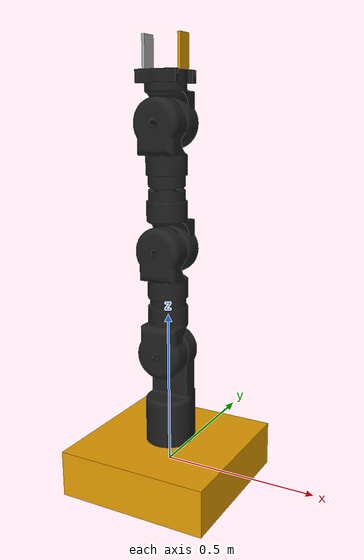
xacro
<robot name="six_dof_arm"  xmlns:xacro="http://www.ros.org/wiki/xacro">

	<xacro:include filename="$(find urdf_tutorials)/urdf/6dof_advanced/links_joints.xacro" />
  <xacro:include filename="$(find urdf_tutorials)/urdf/6dof_advanced/name.xacro" />

	<ros_box name="${link_00_name}"
              origin_rpy="0 0 0" origin_xyz="0 0 0"
              mass="359.99"
              ixx="32.7" ixy="-7.3275E-15" ixz="-7.4508E-18"
              iyy="32.7" iyz="2.9965E-16"
              izz="60"
              size="0.5 0.5 0.15" />

    <ros_joint name="joint_one" type="revolute"
           axis_xyz="0 0 1"
           origin_rpy="0 0 0" origin_xyz="0 0 0.075"
           parent="${link_00_name}" child="link_one"
           effort_limit="200" lower_limit="-3.14" upper_limit="3.14" velocity_limit="0.2" />

    <ros_3D_mesh name="link_one"
              origin_rpy="0 0 0" origin_xyz="0 0 0"
              mass="4.6167"
              ixx="0.069637" ixy="-1.8435E-05" ixz="-1.1246E-05"
              iyy="0.069576" iyz="-0.0059016"
              izz="0.017056"
              meshfile="package://urdf_tutorials/meshes/6dof/link_one.STL"
              meshscale="1 1 1" />

    <ros_joint name="joint_two" type="revolute"
           axis_xyz="0 1 0"
           origin_rpy="0 0 0" origin_xyz="0 0 0.3048"
           parent="link_one" child="link_two"
           effort_limit="200" lower_limit="-3.14" upper_limit="3.14" velocity_limit="0.2" />

    <ros_3D_mesh name="link_two"
              origin_rpy="0 0 0" origin_xyz="0 0 0"
              mass="8.6679"
              ixx="0.15166" ixy="3.6507E-08" ixz="-2.2357E-07"
              iyy="0.15385" iyz="1.0954E-07"
              izz="0.019839"
              meshfile="package://urdf_tutorials/meshes/6dof/link_two.STL"
              meshscale="1 1 1" />

    <ros_joint name="joint_three" type="revolute"
           axis_xyz="0 1 0"
           origin_rpy="0 0 0" origin_xyz="0 0 0.3302"
           parent="link_two" child="link_three"
           effort_limit="200" lower_limit="-3.14" upper_limit="3.14" velocity_limit="0.2" />

    <ros_3D_mesh name="link_three"
              origin_rpy="0 0 0" origin_xyz="0 0 0"
              mass="4.7843"
              ixx="0.030521" ixy="1.0714E-09" ixz="-7.9633E-10"
              iyy="0.031396" iyz="0.005677"
              izz="0.010855"
              meshfile="package://urdf_tutorials/meshes/6dof/link_three.STL"
              meshscale="1 1 1" />

    <ros_joint name="joint_three_two" type="revolute"
           axis_xyz="0 0 1"
           origin_rpy="0 0 0" origin_xyz="0 0 0.1905"
           parent="link_three" child="link_three_two"
           effort_limit="200" lower_limit="-3.14" upper_limit="3.14" velocity_limit="0.2" />

    <ros_3D_mesh name="link_three_two"
              origin_rpy="0 0 0" origin_xyz="0 0 0"
              mass="4.7843"
              ixx="0.030521" ixy="1.0714E-09" ixz="-7.9633E-10"
              iyy="0.031396" iyz="0.005677"
              izz="0.010855"
              meshfile="package://urdf_tutorials/meshes/6dof/link_three_two.STL"
              meshscale="1 1 1" />

    <ros_joint name="joint_four" type="revolute"
           axis_xyz="0 1 0"
           origin_rpy="0 0 0" origin_xyz="0 0 0.1905"
           parent="link_three_two" child="link_four"
           effort_limit="200" lower_limit="-3.14" upper_limit="3.14" velocity_limit="0.2" />

    <ros_3D_mesh name="link_four"
              origin_rpy="0 0 0" origin_xyz="0 0 0"
              mass="3.23"
              ixx="0.011615" ixy="3.0049E-09" ixz="-2.3516E-09"
              iyy="0.013505" iyz="0.0016812"
              izz="0.0069931"
              meshfile="package://urdf_tutorials/meshes/6dof/link_four.STL"
              meshscale="1 1 1" />

    <ros_joint name="joint_five" type="revolute"
           axis_xyz="0 0 1"
           origin_rpy="0 0 0" origin_xyz="0 0 0.1143"
           parent="link_four" child="link_five"
           effort_limit="200" lower_limit="-3.14" upper_limit="3.14" velocity_limit="0.2" />

    <ros_3D_mesh name="link_five"
              origin_rpy="0 0 0" origin_xyz="0 0 0"
              mass="0.96751"
              ixx="0.0012933" ixy="-1.7602E-11" ixz="-1.1137E-18"
              iyy="0.0013496" iyz="-1.4677E-18"
              izz="0.0024173"
              meshfile="package://urdf_tutorials/meshes/6dof/link_five.STL"
              meshscale="1 1 1" />

    <ros_joint name="gripper_one_joint" type="prismatic"
           axis_xyz="1 0 0"
           origin_rpy="0 0 0" origin_xyz="-0.06 0 0.0881"
           parent="link_five" child="gripper_one"
           effort_limit="200" lower_limit="0" upper_limit="0.03" velocity_limit="0.2" />

    <ros_box name="gripper_one"
              origin_rpy="0 0 0" origin_xyz="0 0 0"
              mass="0.2"
              ixx="0.0395416666667" ixy="0" ixz="0"
              iyy="0.106208333333" iyz="0"
              izz="0.106208333333"
              size="0.01 0.05 0.1" />

    <ros_joint name="gripper_two_joint" type="prismatic"
           axis_xyz="-1 0 0"
           origin_rpy="0 0 0" origin_xyz="0.06 0 0.0881"
           parent="link_five" child="gripper_two"
           effort_limit="200" lower_limit="0" upper_limit="0.03" velocity_limit="0.2" />

    <ros_box name="gripper_two"
              origin_rpy="0 0 0" origin_xyz="0 0 0"
              mass="0.2"
              ixx="0.0395416666667" ixy="0" ixz="0"
              iyy="0.106208333333" iyz="0"
              izz="0.106208333333"
              size="0.01 0.05 0.1" />

	<gazebo>
  		<plugin name="gazebo_ros_control" filename="libgazebo_ros_control.so">
  			<robotNamespace>/six_dof_arm</robotNamespace>
  		</plugin>
	</gazebo>
</robot>

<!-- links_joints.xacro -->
<robot xmlns:xacro="http://www.ros.org/wiki/xacro">

<xacro:macro name="ros_joint" params="name type axis_xyz origin_rpy origin_xyz parent child effort_limit lower_limit upper_limit velocity_limit">
    <joint name="${name}" type="${type}">
      <axis xyz="${axis_xyz}" />
      <limit effort="${effort_limit}" lower="${lower_limit}" upper="${upper_limit}" velocity="${velocity_limit}" />
      <origin rpy="${origin_rpy}" xyz="${origin_xyz}" />
      <parent link="${parent}" />
      <child link="${child}" />
    </joint>
    <transmission name="trans_${name}">
      <type>transmission_interface/SimpleTransmission</type>
      <joint name="${name}">
        <hardwareInterface>hardware_interface/EffortJointInterface</hardwareInterface>
      </joint>
      <actuator name="motor_${name}">
        <hardwareInterface>hardware_interface/EffortJointInterface</hardwareInterface>
        <mechanicalReduction>1</mechanicalReduction>
      </actuator>
    </transmission>
  </xacro:macro>

  <xacro:macro name="ros_box" params="name origin_xyz origin_rpy size mass ixx ixy ixz iyy iyz izz">
    <link name="${name}">
      <inertial>
        <mass value="${mass}" />
        <origin rpy="${origin_rpy}" xyz="${origin_xyz}" />
        <inertia ixx="${ixx}" ixy="${ixy}" ixz="${ixz}" iyy="${iyy}" iyz="${iyz}" izz="${izz}" />
      </inertial>
      <collision>
        <origin rpy="${origin_rpy}" xyz="${origin_xyz}" />
        <geometry>
          <box size="${size}" />
        </geometry>
      </collision>
      <visual>
        <origin rpy="${origin_rpy}" xyz="${origin_xyz}" />
        <geometry>
          <box size="${size}" />
        </geometry>
      </visual>
    </link>
  </xacro:macro>

  <xacro:macro name="ros_3D_mesh" params="name origin_xyz origin_rpy meshfile meshscale mass ixx ixy ixz iyy iyz izz">
    <link name="${name}">
      <inertial>
        <mass value="${mass}" />
        <origin rpy="${origin_rpy}" xyz="${origin_xyz}" />
        <inertia ixx="${ixx}" ixy="${ixy}" ixz="${ixz}" iyy="${iyy}" iyz="${iyz}" izz="${izz}" />
      </inertial>
      <collision>
        <origin rpy="${origin_rpy}" xyz="${origin_xyz}" />
        <geometry>
          <mesh filename="${meshfile}" scale="${meshscale}"/>
        </geometry>
      </collision>
      <visual>
        <origin rpy="${origin_rpy}" xyz="${origin_xyz}" />
        <geometry>
          <mesh filename="${meshfile}" scale="${meshscale}"/>
        </geometry>
        <material name="light_black"/>
      </visual>
    </link>
  </xacro:macro>

</robot>

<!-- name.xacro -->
<robot xmlns:xacro="http://www.ros.org/wiki/xacro">
  <xacro:property name="link_00_name" value="base_frame" />
  <xacro:property name="link_01_name" value="link_01" />
  <xacro:property name="link_02_name" value="link_02" />
  <xacro:property name="link_03_name" value="link_03" />
  <xacro:property name="link_04_name" value="link_04" />
  <xacro:property name="link_05_name" value="link_05" />
</robot>
